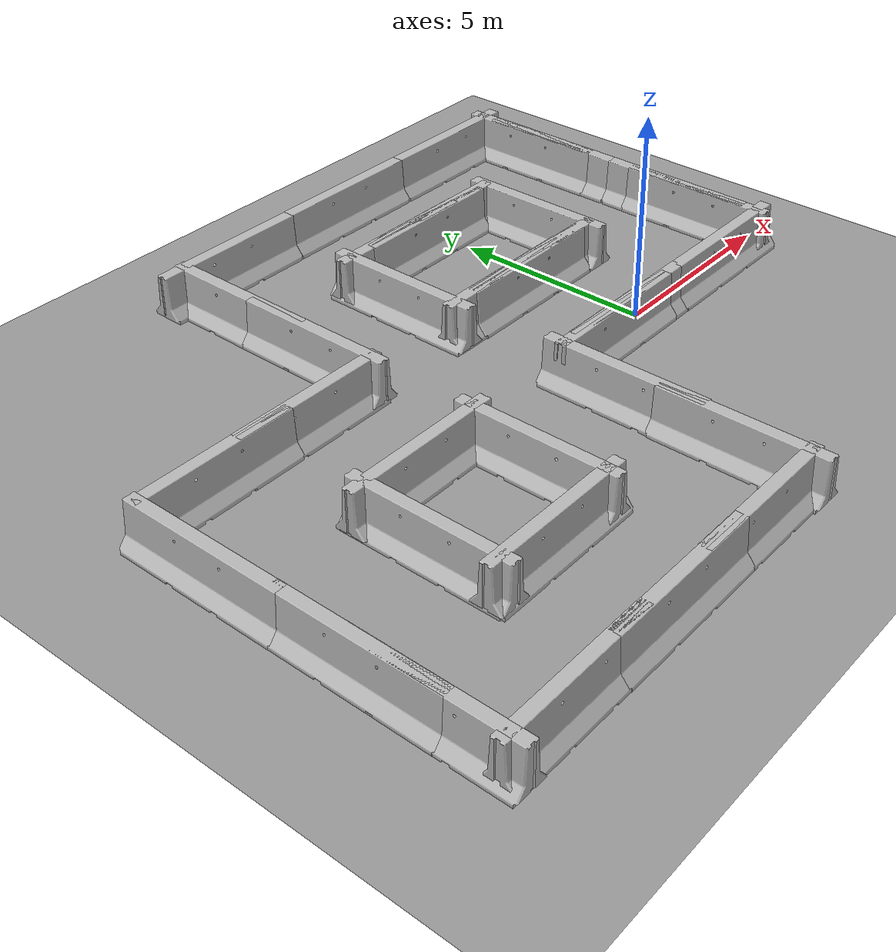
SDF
<sdf version="1.6">
 <world name="default">
  <light name="sun" type="directional">
   <pose>0 0 10 0 -0 0</pose>
   <diffuse>0.8 0.8 0.8 1</diffuse>
   <specular>0.2 0.2 0.2 1</specular>
   <attenuation>
    <range>1000</range>
    <constant>0.9</constant>
    <linear>0.01</linear>
    <quadratic>0.001</quadratic>
   </attenuation>
   <direction>0.5 0.1 -0.9</direction>
  </light>
  <scene><ambient>0.4 0.4 0.4 1</ambient><background>0.7 0.7 0.7 1</background><shadows>1</shadows></scene>
  <physics name="default_physics" default="0" type="ode">
   <max_step_size>0.01</max_step_size>
   <real_time_factor>1</real_time_factor>
   <real_time_update_rate>100</real_time_update_rate>
  </physics>
  <model name="ground_plane_0">
   <static>1</static>
   <link name="link">
    <collision name="collision">
     <geometry><plane><normal>0 0 1</normal><size>100 100</size></plane></geometry>
     <surface><friction><ode><mu>100</mu><mu2>50</mu2></ode></friction></surface>
    </collision>
    <visual name="visual">
     <cast_shadows>0</cast_shadows>
     <geometry><plane><normal>0 0 1</normal><size>100 100</size></plane></geometry>
     <material>
      <script><uri>file://media/materials/scripts/gazebo.material</uri><name>Gazebo/Grey</name></script>
     </material>
    </visual>
    <velocity_decay><linear>0</linear><angular>0</angular></velocity_decay>
   </link>
   <pose>0.497681 0 0 0 -0 0</pose>
  </model>
  <gravity>0 0 -9.8</gravity>
  <magnetic_field>6e-06 2.3e-05 -4.2e-05</magnetic_field>
  <atmosphere type="adiabatic"/>
  <spherical_coordinates>
   <surface_model>EARTH_WGS84</surface_model>
   <latitude_deg>0</latitude_deg>
   <longitude_deg>0</longitude_deg>
   <elevation>0</elevation>
   <heading_deg>0</heading_deg>
  </spherical_coordinates>
  <model name="jersey_barrier_clone">
   <static>1</static>
   <link name="link">
    <visual name="visual">
     <geometry>
      <mesh><uri>model://jersey_barrier/meshes/jersey_barrier.dae</uri><scale>1 1 1</scale></mesh>
     </geometry>
    </visual>
    <collision name="upright">
     <pose>0 0 0.5715 0 -0 0</pose>
     <geometry><box><size>4.06542 0.3063 1.143</size></box></geometry>
    </collision>
    <collision name="base">
     <pose>0 0 0.032258 0 -0 0</pose>
     <geometry><box><size>4.06542 0.8107 0.064516</size></box></geometry>
    </collision>
    <collision name="base2">
     <pose>0 0 0.1 0 -0 0</pose>
     <geometry><box><size>4.06542 0.65 0.1</size></box></geometry>
    </collision>
    <collision name="base3">
     <pose>0 0 0.2 0 -0 0</pose>
     <geometry><box><size>4.06542 0.5 0.1</size></box></geometry>
    </collision>
    <collision name="left-angle">
     <pose>0 -0.224 0.2401 0.9 -0 0</pose>
     <geometry><box><size>4.06542 0.5 0.064516</size></box></geometry>
    </collision>
    <collision name="right-angle">
     <pose>0 0.224 0.2401 -0.9 0 0</pose>
     <geometry><box><size>4.06542 0.5 0.064516</size></box></geometry>
    </collision>
    <velocity_decay><linear>0</linear><angular>0</angular></velocity_decay>
   </link>
   <pose>-1.0164 2.41514 0 0 0 -0.002521</pose>
  </model>
  <model name="jersey_barrier_clone_clone">
   <static>1</static>
   <link name="link">
    <visual name="visual">
     <geometry>
      <mesh><uri>model://jersey_barrier/meshes/jersey_barrier.dae</uri><scale>1 1 1</scale></mesh>
     </geometry>
    </visual>
    <collision name="upright">
     <pose>0 0 0.5715 0 -0 0</pose>
     <geometry><box><size>4.06542 0.3063 1.143</size></box></geometry>
    </collision>
    <collision name="base">
     <pose>0 0 0.032258 0 -0 0</pose>
     <geometry><box><size>4.06542 0.8107 0.064516</size></box></geometry>
    </collision>
    <collision name="base2">
     <pose>0 0 0.1 0 -0 0</pose>
     <geometry><box><size>4.06542 0.65 0.1</size></box></geometry>
    </collision>
    <collision name="base3">
     <pose>0 0 0.2 0 -0 0</pose>
     <geometry><box><size>4.06542 0.5 0.1</size></box></geometry>
    </collision>
    <collision name="left-angle">
     <pose>0 -0.224 0.2401 0.9 -0 0</pose>
     <geometry><box><size>4.06542 0.5 0.064516</size></box></geometry>
    </collision>
    <collision name="right-angle">
     <pose>0 0.224 0.2401 -0.9 0 0</pose>
     <geometry><box><size>4.06542 0.5 0.064516</size></box></geometry>
    </collision>
    <velocity_decay><linear>0</linear><angular>0</angular></velocity_decay>
   </link>
   <pose>-1.03133 -0.427588 0 0 0 -0.002521</pose>
  </model>
  <model name="jersey_barrier_clone_clone_clone">
   <static>1</static>
   <link name="link">
    <visual name="visual">
     <geometry>
      <mesh><uri>model://jersey_barrier/meshes/jersey_barrier.dae</uri><scale>1 1 1</scale></mesh>
     </geometry>
    </visual>
    <collision name="upright">
     <pose>0 0 0.5715 0 -0 0</pose>
     <geometry><box><size>4.06542 0.3063 1.143</size></box></geometry>
    </collision>
    <collision name="base">
     <pose>0 0 0.032258 0 -0 0</pose>
     <geometry><box><size>4.06542 0.8107 0.064516</size></box></geometry>
    </collision>
    <collision name="base2">
     <pose>0 0 0.1 0 -0 0</pose>
     <geometry><box><size>4.06542 0.65 0.1</size></box></geometry>
    </collision>
    <collision name="base3">
     <pose>0 0 0.2 0 -0 0</pose>
     <geometry><box><size>4.06542 0.5 0.1</size></box></geometry>
    </collision>
    <collision name="left-angle">
     <pose>0 -0.224 0.2401 0.9 -0 0</pose>
     <geometry><box><size>4.06542 0.5 0.064516</size></box></geometry>
    </collision>
    <collision name="right-angle">
     <pose>0 0.224 0.2401 -0.9 0 0</pose>
     <geometry><box><size>4.06542 0.5 0.064516</size></box></geometry>
    </collision>
    <velocity_decay><linear>0</linear><angular>0</angular></velocity_decay>
   </link>
   <pose>-3.39729 -1.98888 0 0 -0 1.56994</pose>
  </model>
  <model name="jersey_barrier_clone_clone_clone_clone">
   <static>1</static>
   <link name="link">
    <visual name="visual">
     <geometry>
      <mesh><uri>model://jersey_barrier/meshes/jersey_barrier.dae</uri><scale>1 1 1</scale></mesh>
     </geometry>
    </visual>
    <collision name="upright">
     <pose>0 0 0.5715 0 -0 0</pose>
     <geometry><box><size>4.06542 0.3063 1.143</size></box></geometry>
    </collision>
    <collision name="base">
     <pose>0 0 0.032258 0 -0 0</pose>
     <geometry><box><size>4.06542 0.8107 0.064516</size></box></geometry>
    </collision>
    <collision name="base2">
     <pose>0 0 0.1 0 -0 0</pose>
     <geometry><box><size>4.06542 0.65 0.1</size></box></geometry>
    </collision>
    <collision name="base3">
     <pose>0 0 0.2 0 -0 0</pose>
     <geometry><box><size>4.06542 0.5 0.1</size></box></geometry>
    </collision>
    <collision name="left-angle">
     <pose>0 -0.224 0.2401 0.9 -0 0</pose>
     <geometry><box><size>4.06542 0.5 0.064516</size></box></geometry>
    </collision>
    <collision name="right-angle">
     <pose>0 0.224 0.2401 -0.9 0 0</pose>
     <geometry><box><size>4.06542 0.5 0.064516</size></box></geometry>
    </collision>
    <velocity_decay><linear>0</linear><angular>0</angular></velocity_decay>
   </link>
   <pose>-3.58771 4.01957 0 0 -0 1.56994</pose>
  </model>
  <model name="jersey_barrier_clone_clone_clone_0">
   <static>1</static>
   <link name="link">
    <visual name="visual">
     <geometry>
      <mesh><uri>model://jersey_barrier/meshes/jersey_barrier.dae</uri><scale>1 1 1</scale></mesh>
     </geometry>
    </visual>
    <collision name="upright">
     <pose>0 0 0.5715 0 -0 0</pose>
     <geometry><box><size>4.06542 0.3063 1.143</size></box></geometry>
    </collision>
    <collision name="base">
     <pose>0 0 0.032258 0 -0 0</pose>
     <geometry><box><size>4.06542 0.8107 0.064516</size></box></geometry>
    </collision>
    <collision name="base2">
     <pose>0 0 0.1 0 -0 0</pose>
     <geometry><box><size>4.06542 0.65 0.1</size></box></geometry>
    </collision>
    <collision name="base3">
     <pose>0 0 0.2 0 -0 0</pose>
     <geometry><box><size>4.06542 0.5 0.1</size></box></geometry>
    </collision>
    <collision name="left-angle">
     <pose>0 -0.224 0.2401 0.9 -0 0</pose>
     <geometry><box><size>4.06542 0.5 0.064516</size></box></geometry>
    </collision>
    <collision name="right-angle">
     <pose>0 0.224 0.2401 -0.9 0 0</pose>
     <geometry><box><size>4.06542 0.5 0.064516</size></box></geometry>
    </collision>
    <velocity_decay><linear>0</linear><angular>0</angular></velocity_decay>
   </link>
   <pose>2.89349 -0.44373 0 0 0 -0.002521</pose>
  </model>
  <model name="jersey_barrier_clone_clone_clone_clone_0">
   <static>1</static>
   <link name="link">
    <visual name="visual">
     <geometry>
      <mesh><uri>model://jersey_barrier/meshes/jersey_barrier.dae</uri><scale>1 1 1</scale></mesh>
     </geometry>
    </visual>
    <collision name="upright">
     <pose>0 0 0.5715 0 -0 0</pose>
     <geometry><box><size>4.06542 0.3063 1.143</size></box></geometry>
    </collision>
    <collision name="base">
     <pose>0 0 0.032258 0 -0 0</pose>
     <geometry><box><size>4.06542 0.8107 0.064516</size></box></geometry>
    </collision>
    <collision name="base2">
     <pose>0 0 0.1 0 -0 0</pose>
     <geometry><box><size>4.06542 0.65 0.1</size></box></geometry>
    </collision>
    <collision name="base3">
     <pose>0 0 0.2 0 -0 0</pose>
     <geometry><box><size>4.06542 0.5 0.1</size></box></geometry>
    </collision>
    <collision name="left-angle">
     <pose>0 -0.224 0.2401 0.9 -0 0</pose>
     <geometry><box><size>4.06542 0.5 0.064516</size></box></geometry>
    </collision>
    <collision name="right-angle">
     <pose>0 0.224 0.2401 -0.9 0 0</pose>
     <geometry><box><size>4.06542 0.5 0.064516</size></box></geometry>
    </collision>
    <velocity_decay><linear>0</linear><angular>0</angular></velocity_decay>
   </link>
   <pose>1.32989 3.97697 0 0 -0 1.56994</pose>
  </model>
  <model name="jersey_barrier_clone_clone_clone_clone_1">
   <static>1</static>
   <link name="link">
    <visual name="visual">
     <geometry>
      <mesh><uri>model://jersey_barrier/meshes/jersey_barrier.dae</uri><scale>1 1 1</scale></mesh>
     </geometry>
    </visual>
    <collision name="upright">
     <pose>0 0 0.5715 0 -0 0</pose>
     <geometry><box><size>4.06542 0.3063 1.143</size></box></geometry>
    </collision>
    <collision name="base">
     <pose>0 0 0.032258 0 -0 0</pose>
     <geometry><box><size>4.06542 0.8107 0.064516</size></box></geometry>
    </collision>
    <collision name="base2">
     <pose>0 0 0.1 0 -0 0</pose>
     <geometry><box><size>4.06542 0.65 0.1</size></box></geometry>
    </collision>
    <collision name="base3">
     <pose>0 0 0.2 0 -0 0</pose>
     <geometry><box><size>4.06542 0.5 0.1</size></box></geometry>
    </collision>
    <collision name="left-angle">
     <pose>0 -0.224 0.2401 0.9 -0 0</pose>
     <geometry><box><size>4.06542 0.5 0.064516</size></box></geometry>
    </collision>
    <collision name="right-angle">
     <pose>0 0.224 0.2401 -0.9 0 0</pose>
     <geometry><box><size>4.06542 0.5 0.064516</size></box></geometry>
    </collision>
    <velocity_decay><linear>0</linear><angular>0</angular></velocity_decay>
   </link>
   <pose>4.47676 1.91444 0 0 -0 1.56994</pose>
  </model>
  <model name="jersey_barrier_clone_clone_clone_clone_2">
   <static>1</static>
   <link name="link">
    <visual name="visual">
     <geometry>
      <mesh><uri>model://jersey_barrier/meshes/jersey_barrier.dae</uri><scale>1 1 1</scale></mesh>
     </geometry>
    </visual>
    <collision name="upright">
     <pose>0 0 0.5715 0 -0 0</pose>
     <geometry><box><size>4.06542 0.3063 1.143</size></box></geometry>
    </collision>
    <collision name="base">
     <pose>0 0 0.032258 0 -0 0</pose>
     <geometry><box><size>4.06542 0.8107 0.064516</size></box></geometry>
    </collision>
    <collision name="base2">
     <pose>0 0 0.1 0 -0 0</pose>
     <geometry><box><size>4.06542 0.65 0.1</size></box></geometry>
    </collision>
    <collision name="base3">
     <pose>0 0 0.2 0 -0 0</pose>
     <geometry><box><size>4.06542 0.5 0.1</size></box></geometry>
    </collision>
    <collision name="left-angle">
     <pose>0 -0.224 0.2401 0.9 -0 0</pose>
     <geometry><box><size>4.06542 0.5 0.064516</size></box></geometry>
    </collision>
    <collision name="right-angle">
     <pose>0 0.224 0.2401 -0.9 0 0</pose>
     <geometry><box><size>4.06542 0.5 0.064516</size></box></geometry>
    </collision>
    <velocity_decay><linear>0</linear><angular>0</angular></velocity_decay>
   </link>
   <pose>4.48362 5.90031 0 0 -0 1.56994</pose>
  </model>
  <model name="jersey_barrier_clone_clone_0">
   <static>1</static>
   <link name="link">
    <visual name="visual">
     <geometry>
      <mesh><uri>model://jersey_barrier/meshes/jersey_barrier.dae</uri><scale>1 1 1</scale></mesh>
     </geometry>
    </visual>
    <collision name="upright">
     <pose>0 0 0.5715 0 -0 0</pose>
     <geometry><box><size>4.06542 0.3063 1.143</size></box></geometry>
    </collision>
    <collision name="base">
     <pose>0 0 0.032258 0 -0 0</pose>
     <geometry><box><size>4.06542 0.8107 0.064516</size></box></geometry>
    </collision>
    <collision name="base2">
     <pose>0 0 0.1 0 -0 0</pose>
     <geometry><box><size>4.06542 0.65 0.1</size></box></geometry>
    </collision>
    <collision name="base3">
     <pose>0 0 0.2 0 -0 0</pose>
     <geometry><box><size>4.06542 0.5 0.1</size></box></geometry>
    </collision>
    <collision name="left-angle">
     <pose>0 -0.224 0.2401 0.9 -0 0</pose>
     <geometry><box><size>4.06542 0.5 0.064516</size></box></geometry>
    </collision>
    <collision name="right-angle">
     <pose>0 0.224 0.2401 -0.9 0 0</pose>
     <geometry><box><size>4.06542 0.5 0.064516</size></box></geometry>
    </collision>
    <velocity_decay><linear>0</linear><angular>0</angular></velocity_decay>
   </link>
   <pose>2.90937 8.26436 0 0 0 -0.002521</pose>
  </model>
  <model name="jersey_barrier_clone_clone_0_clone">
   <static>1</static>
   <link name="link">
    <visual name="visual">
     <geometry>
      <mesh><uri>model://jersey_barrier/meshes/jersey_barrier.dae</uri><scale>1 1 1</scale></mesh>
     </geometry>
    </visual>
    <collision name="upright">
     <pose>0 0 0.5715 0 -0 0</pose>
     <geometry><box><size>4.06542 0.3063 1.143</size></box></geometry>
    </collision>
    <collision name="base">
     <pose>0 0 0.032258 0 -0 0</pose>
     <geometry><box><size>4.06542 0.8107 0.064516</size></box></geometry>
    </collision>
    <collision name="base2">
     <pose>0 0 0.1 0 -0 0</pose>
     <geometry><box><size>4.06542 0.65 0.1</size></box></geometry>
    </collision>
    <collision name="base3">
     <pose>0 0 0.2 0 -0 0</pose>
     <geometry><box><size>4.06542 0.5 0.1</size></box></geometry>
    </collision>
    <collision name="left-angle">
     <pose>0 -0.224 0.2401 0.9 -0 0</pose>
     <geometry><box><size>4.06542 0.5 0.064516</size></box></geometry>
    </collision>
    <collision name="right-angle">
     <pose>0 0.224 0.2401 -0.9 0 0</pose>
     <geometry><box><size>4.06542 0.5 0.064516</size></box></geometry>
    </collision>
    <velocity_decay><linear>0</linear><angular>0</angular></velocity_decay>
   </link>
   <pose>-1.08414 8.27205 0 0 0 -0.002521</pose>
  </model>
  <model name="jersey_barrier_clone_clone_0_clone_0">
   <static>1</static>
   <link name="link">
    <visual name="visual">
     <geometry>
      <mesh><uri>model://jersey_barrier/meshes/jersey_barrier.dae</uri><scale>1 1 1</scale></mesh>
     </geometry>
    </visual>
    <collision name="upright">
     <pose>0 0 0.5715 0 -0 0</pose>
     <geometry><box><size>4.06542 0.3063 1.143</size></box></geometry>
    </collision>
    <collision name="base">
     <pose>0 0 0.032258 0 -0 0</pose>
     <geometry><box><size>4.06542 0.8107 0.064516</size></box></geometry>
    </collision>
    <collision name="base2">
     <pose>0 0 0.1 0 -0 0</pose>
     <geometry><box><size>4.06542 0.65 0.1</size></box></geometry>
    </collision>
    <collision name="base3">
     <pose>0 0 0.2 0 -0 0</pose>
     <geometry><box><size>4.06542 0.5 0.1</size></box></geometry>
    </collision>
    <collision name="left-angle">
     <pose>0 -0.224 0.2401 0.9 -0 0</pose>
     <geometry><box><size>4.06542 0.5 0.064516</size></box></geometry>
    </collision>
    <collision name="right-angle">
     <pose>0 0.224 0.2401 -0.9 0 0</pose>
     <geometry><box><size>4.06542 0.5 0.064516</size></box></geometry>
    </collision>
    <velocity_decay><linear>0</linear><angular>0</angular></velocity_decay>
   </link>
   <pose>-0.979254 5.59857 0 0 0 -0.002521</pose>
  </model>
  <model name="jersey_barrier_clone_clone_0_clone_1">
   <static>1</static>
   <link name="link">
    <visual name="visual">
     <geometry>
      <mesh><uri>model://jersey_barrier/meshes/jersey_barrier.dae</uri><scale>1 1 1</scale></mesh>
     </geometry>
    </visual>
    <collision name="upright">
     <pose>0 0 0.5715 0 -0 0</pose>
     <geometry><box><size>4.06542 0.3063 1.143</size></box></geometry>
    </collision>
    <collision name="base">
     <pose>0 0 0.032258 0 -0 0</pose>
     <geometry><box><size>4.06542 0.8107 0.064516</size></box></geometry>
    </collision>
    <collision name="base2">
     <pose>0 0 0.1 0 -0 0</pose>
     <geometry><box><size>4.06542 0.65 0.1</size></box></geometry>
    </collision>
    <collision name="base3">
     <pose>0 0 0.2 0 -0 0</pose>
     <geometry><box><size>4.06542 0.5 0.1</size></box></geometry>
    </collision>
    <collision name="left-angle">
     <pose>0 -0.224 0.2401 0.9 -0 0</pose>
     <geometry><box><size>4.06542 0.5 0.064516</size></box></geometry>
    </collision>
    <collision name="right-angle">
     <pose>0 0.224 0.2401 -0.9 0 0</pose>
     <geometry><box><size>4.06542 0.5 0.064516</size></box></geometry>
    </collision>
    <velocity_decay><linear>0</linear><angular>0</angular></velocity_decay>
   </link>
   <pose>-5.07599 8.2675 0 0 0 -0.002521</pose>
  </model>
  <model name="jersey_barrier_clone_clone_clone_clone_clone">
   <static>1</static>
   <link name="link">
    <visual name="visual">
     <geometry>
      <mesh><uri>model://jersey_barrier/meshes/jersey_barrier.dae</uri><scale>1 1 1</scale></mesh>
     </geometry>
    </visual>
    <collision name="upright">
     <pose>0 0 0.5715 0 -0 0</pose>
     <geometry><box><size>4.06542 0.3063 1.143</size></box></geometry>
    </collision>
    <collision name="base">
     <pose>0 0 0.032258 0 -0 0</pose>
     <geometry><box><size>4.06542 0.8107 0.064516</size></box></geometry>
    </collision>
    <collision name="base2">
     <pose>0 0 0.1 0 -0 0</pose>
     <geometry><box><size>4.06542 0.65 0.1</size></box></geometry>
    </collision>
    <collision name="base3">
     <pose>0 0 0.2 0 -0 0</pose>
     <geometry><box><size>4.06542 0.5 0.1</size></box></geometry>
    </collision>
    <collision name="left-angle">
     <pose>0 -0.224 0.2401 0.9 -0 0</pose>
     <geometry><box><size>4.06542 0.5 0.064516</size></box></geometry>
    </collision>
    <collision name="right-angle">
     <pose>0 0.224 0.2401 -0.9 0 0</pose>
     <geometry><box><size>4.06542 0.5 0.064516</size></box></geometry>
    </collision>
    <velocity_decay><linear>0</linear><angular>0</angular></velocity_decay>
   </link>
   <pose>-6.41614 6.4485 0 0 -0 1.56994</pose>
  </model>
  <model name="jersey_barrier_clone_clone_clone_clone_clone_0">
   <static>1</static>
   <link name="link">
    <visual name="visual">
     <geometry>
      <mesh><uri>model://jersey_barrier/meshes/jersey_barrier.dae</uri><scale>1 1 1</scale></mesh>
     </geometry>
    </visual>
    <collision name="upright">
     <pose>0 0 0.5715 0 -0 0</pose>
     <geometry><box><size>4.06542 0.3063 1.143</size></box></geometry>
    </collision>
    <collision name="base">
     <pose>0 0 0.032258 0 -0 0</pose>
     <geometry><box><size>4.06542 0.8107 0.064516</size></box></geometry>
    </collision>
    <collision name="base2">
     <pose>0 0 0.1 0 -0 0</pose>
     <geometry><box><size>4.06542 0.65 0.1</size></box></geometry>
    </collision>
    <collision name="base3">
     <pose>0 0 0.2 0 -0 0</pose>
     <geometry><box><size>4.06542 0.5 0.1</size></box></geometry>
    </collision>
    <collision name="left-angle">
     <pose>0 -0.224 0.2401 0.9 -0 0</pose>
     <geometry><box><size>4.06542 0.5 0.064516</size></box></geometry>
    </collision>
    <collision name="right-angle">
     <pose>0 0.224 0.2401 -0.9 0 0</pose>
     <geometry><box><size>4.06542 0.5 0.064516</size></box></geometry>
    </collision>
    <velocity_decay><linear>0</linear><angular>0</angular></velocity_decay>
   </link>
   <pose>4.46939 1.27461 0 0 -0 1.56994</pose>
  </model>
  <model name="jersey_barrier_clone_clone_clone_clone_clone_1">
   <static>1</static>
   <link name="link">
    <visual name="visual">
     <geometry>
      <mesh><uri>model://jersey_barrier/meshes/jersey_barrier.dae</uri><scale>1 1 1</scale></mesh>
     </geometry>
    </visual>
    <collision name="upright">
     <pose>0 0 0.5715 0 -0 0</pose>
     <geometry><box><size>4.06542 0.3063 1.143</size></box></geometry>
    </collision>
    <collision name="base">
     <pose>0 0 0.032258 0 -0 0</pose>
     <geometry><box><size>4.06542 0.8107 0.064516</size></box></geometry>
    </collision>
    <collision name="base2">
     <pose>0 0 0.1 0 -0 0</pose>
     <geometry><box><size>4.06542 0.65 0.1</size></box></geometry>
    </collision>
    <collision name="base3">
     <pose>0 0 0.2 0 -0 0</pose>
     <geometry><box><size>4.06542 0.5 0.1</size></box></geometry>
    </collision>
    <collision name="left-angle">
     <pose>0 -0.224 0.2401 0.9 -0 0</pose>
     <geometry><box><size>4.06542 0.5 0.064516</size></box></geometry>
    </collision>
    <collision name="right-angle">
     <pose>0 0.224 0.2401 -0.9 0 0</pose>
     <geometry><box><size>4.06542 0.5 0.064516</size></box></geometry>
    </collision>
    <velocity_decay><linear>0</linear><angular>0</angular></velocity_decay>
   </link>
   <pose>4.4751 6.57397 0 0 -0 1.56994</pose>
  </model>
  <model name="jersey_barrier_clone_clone_1">
   <static>1</static>
   <link name="link">
    <visual name="visual">
     <geometry>
      <mesh><uri>model://jersey_barrier/meshes/jersey_barrier.dae</uri><scale>1 1 1</scale></mesh>
     </geometry>
    </visual>
    <collision name="upright">
     <pose>0 0 0.5715 0 -0 0</pose>
     <geometry><box><size>4.06542 0.3063 1.143</size></box></geometry>
    </collision>
    <collision name="base">
     <pose>0 0 0.032258 0 -0 0</pose>
     <geometry><box><size>4.06542 0.8107 0.064516</size></box></geometry>
    </collision>
    <collision name="base2">
     <pose>0 0 0.1 0 -0 0</pose>
     <geometry><box><size>4.06542 0.65 0.1</size></box></geometry>
    </collision>
    <collision name="base3">
     <pose>0 0 0.2 0 -0 0</pose>
     <geometry><box><size>4.06542 0.5 0.1</size></box></geometry>
    </collision>
    <collision name="left-angle">
     <pose>0 -0.224 0.2401 0.9 -0 0</pose>
     <geometry><box><size>4.06542 0.5 0.064516</size></box></geometry>
    </collision>
    <collision name="right-angle">
     <pose>0 0.224 0.2401 -0.9 0 0</pose>
     <geometry><box><size>4.06542 0.5 0.064516</size></box></geometry>
    </collision>
    <velocity_decay><linear>0</linear><angular>0</angular></velocity_decay>
   </link>
   <pose>-1.86057 2.44663 0 0 0 -0.002521</pose>
  </model>
  <model name="jersey_barrier_clone_clone_2">
   <static>1</static>
   <link name="link">
    <visual name="visual">
     <geometry>
      <mesh><uri>model://jersey_barrier/meshes/jersey_barrier.dae</uri><scale>1 1 1</scale></mesh>
     </geometry>
    </visual>
    <collision name="upright">
     <pose>0 0 0.5715 0 -0 0</pose>
     <geometry><box><size>4.06542 0.3063 1.143</size></box></geometry>
    </collision>
    <collision name="base">
     <pose>0 0 0.032258 0 -0 0</pose>
     <geometry><box><size>4.06542 0.8107 0.064516</size></box></geometry>
    </collision>
    <collision name="base2">
     <pose>0 0 0.1 0 -0 0</pose>
     <geometry><box><size>4.06542 0.65 0.1</size></box></geometry>
    </collision>
    <collision name="base3">
     <pose>0 0 0.2 0 -0 0</pose>
     <geometry><box><size>4.06542 0.5 0.1</size></box></geometry>
    </collision>
    <collision name="left-angle">
     <pose>0 -0.224 0.2401 0.9 -0 0</pose>
     <geometry><box><size>4.06542 0.5 0.064516</size></box></geometry>
    </collision>
    <collision name="right-angle">
     <pose>0 0.224 0.2401 -0.9 0 0</pose>
     <geometry><box><size>4.06542 0.5 0.064516</size></box></geometry>
    </collision>
    <velocity_decay><linear>0</linear><angular>0</angular></velocity_decay>
   </link>
   <pose>-1.9419 5.62522 0 0 0 -0.002521</pose>
  </model>
  <model name="jersey_barrier_clone_clone_3">
   <static>1</static>
   <link name="link">
    <visual name="visual">
     <geometry>
      <mesh><uri>model://jersey_barrier/meshes/jersey_barrier.dae</uri><scale>1 1 1</scale></mesh>
     </geometry>
    </visual>
    <collision name="upright">
     <pose>0 0 0.5715 0 -0 0</pose>
     <geometry><box><size>4.06542 0.3063 1.143</size></box></geometry>
    </collision>
    <collision name="base">
     <pose>0 0 0.032258 0 -0 0</pose>
     <geometry><box><size>4.06542 0.8107 0.064516</size></box></geometry>
    </collision>
    <collision name="base2">
     <pose>0 0 0.1 0 -0 0</pose>
     <geometry><box><size>4.06542 0.65 0.1</size></box></geometry>
    </collision>
    <collision name="base3">
     <pose>0 0 0.2 0 -0 0</pose>
     <geometry><box><size>4.06542 0.5 0.1</size></box></geometry>
    </collision>
    <collision name="left-angle">
     <pose>0 -0.224 0.2401 0.9 -0 0</pose>
     <geometry><box><size>4.06542 0.5 0.064516</size></box></geometry>
    </collision>
    <collision name="right-angle">
     <pose>0 0.224 0.2401 -0.9 0 0</pose>
     <geometry><box><size>4.06542 0.5 0.064516</size></box></geometry>
    </collision>
    <velocity_decay><linear>0</linear><angular>0</angular></velocity_decay>
   </link>
   <pose>-0.606146 5.61231 0 0 0 -0.002521</pose>
  </model>
  <model name="jersey_barrier_clone_clone_4">
   <static>1</static>
   <link name="link">
    <visual name="visual">
     <geometry>
      <mesh><uri>model://jersey_barrier/meshes/jersey_barrier.dae</uri><scale>1 1 1</scale></mesh>
     </geometry>
    </visual>
    <collision name="upright">
     <pose>0 0 0.5715 0 -0 0</pose>
     <geometry><box><size>4.06542 0.3063 1.143</size></box></geometry>
    </collision>
    <collision name="base">
     <pose>0 0 0.032258 0 -0 0</pose>
     <geometry><box><size>4.06542 0.8107 0.064516</size></box></geometry>
    </collision>
    <collision name="base2">
     <pose>0 0 0.1 0 -0 0</pose>
     <geometry><box><size>4.06542 0.65 0.1</size></box></geometry>
    </collision>
    <collision name="base3">
     <pose>0 0 0.2 0 -0 0</pose>
     <geometry><box><size>4.06542 0.5 0.1</size></box></geometry>
    </collision>
    <collision name="left-angle">
     <pose>0 -0.224 0.2401 0.9 -0 0</pose>
     <geometry><box><size>4.06542 0.5 0.064516</size></box></geometry>
    </collision>
    <collision name="right-angle">
     <pose>0 0.224 0.2401 -0.9 0 0</pose>
     <geometry><box><size>4.06542 0.5 0.064516</size></box></geometry>
    </collision>
    <velocity_decay><linear>0</linear><angular>0</angular></velocity_decay>
   </link>
   <pose>-0.587404 2.42434 0 0 0 -0.002521</pose>
  </model>
  <model name="jersey_barrier_clone_clone_clone_clone_clone_clone">
   <static>1</static>
   <link name="link">
    <visual name="visual">
     <geometry>
      <mesh><uri>model://jersey_barrier/meshes/jersey_barrier.dae</uri><scale>1 1 1</scale></mesh>
     </geometry>
    </visual>
    <collision name="upright">
     <pose>0 0 0.5715 0 -0 0</pose>
     <geometry><box><size>4.06542 0.3063 1.143</size></box></geometry>
    </collision>
    <collision name="base">
     <pose>0 0 0.032258 0 -0 0</pose>
     <geometry><box><size>4.06542 0.8107 0.064516</size></box></geometry>
    </collision>
    <collision name="base2">
     <pose>0 0 0.1 0 -0 0</pose>
     <geometry><box><size>4.06542 0.65 0.1</size></box></geometry>
    </collision>
    <collision name="base3">
     <pose>0 0 0.2 0 -0 0</pose>
     <geometry><box><size>4.06542 0.5 0.1</size></box></geometry>
    </collision>
    <collision name="left-angle">
     <pose>0 -0.224 0.2401 0.9 -0 0</pose>
     <geometry><box><size>4.06542 0.5 0.064516</size></box></geometry>
    </collision>
    <collision name="right-angle">
     <pose>0 0.224 0.2401 -0.9 0 0</pose>
     <geometry><box><size>4.06542 0.5 0.064516</size></box></geometry>
    </collision>
    <velocity_decay><linear>0</linear><angular>0</angular></velocity_decay>
   </link>
   <pose>-6.41918 4.04648 0 0 -0 1.56994</pose>
  </model>
  <model name="jersey_barrier_clone_clone_clone_1">
   <static>1</static>
   <link name="link">
    <visual name="visual">
     <geometry>
      <mesh><uri>model://jersey_barrier/meshes/jersey_barrier.dae</uri><scale>1 1 1</scale></mesh>
     </geometry>
    </visual>
    <collision name="upright">
     <pose>0 0 0.5715 0 -0 0</pose>
     <geometry><box><size>4.06542 0.3063 1.143</size></box></geometry>
    </collision>
    <collision name="base">
     <pose>0 0 0.032258 0 -0 0</pose>
     <geometry><box><size>4.06542 0.8107 0.064516</size></box></geometry>
    </collision>
    <collision name="base2">
     <pose>0 0 0.1 0 -0 0</pose>
     <geometry><box><size>4.06542 0.65 0.1</size></box></geometry>
    </collision>
    <collision name="base3">
     <pose>0 0 0.2 0 -0 0</pose>
     <geometry><box><size>4.06542 0.5 0.1</size></box></geometry>
    </collision>
    <collision name="left-angle">
     <pose>0 -0.224 0.2401 0.9 -0 0</pose>
     <geometry><box><size>4.06542 0.5 0.064516</size></box></geometry>
    </collision>
    <collision name="right-angle">
     <pose>0 0.224 0.2401 -0.9 0 0</pose>
     <geometry><box><size>4.06542 0.5 0.064516</size></box></geometry>
    </collision>
    <velocity_decay><linear>0</linear><angular>0</angular></velocity_decay>
   </link>
   <pose>-8.24268 2.42173 0 0 0 -0.002521</pose>
  </model>
  <model name="jersey_barrier_clone_clone_clone_2">
   <static>1</static>
   <link name="link">
    <visual name="visual">
     <geometry>
      <mesh><uri>model://jersey_barrier/meshes/jersey_barrier.dae</uri><scale>1 1 1</scale></mesh>
     </geometry>
    </visual>
    <collision name="upright">
     <pose>0 0 0.5715 0 -0 0</pose>
     <geometry><box><size>4.06542 0.3063 1.143</size></box></geometry>
    </collision>
    <collision name="base">
     <pose>0 0 0.032258 0 -0 0</pose>
     <geometry><box><size>4.06542 0.8107 0.064516</size></box></geometry>
    </collision>
    <collision name="base2">
     <pose>0 0 0.1 0 -0 0</pose>
     <geometry><box><size>4.06542 0.65 0.1</size></box></geometry>
    </collision>
    <collision name="base3">
     <pose>0 0 0.2 0 -0 0</pose>
     <geometry><box><size>4.06542 0.5 0.1</size></box></geometry>
    </collision>
    <collision name="left-angle">
     <pose>0 -0.224 0.2401 0.9 -0 0</pose>
     <geometry><box><size>4.06542 0.5 0.064516</size></box></geometry>
    </collision>
    <collision name="right-angle">
     <pose>0 0.224 0.2401 -0.9 0 0</pose>
     <geometry><box><size>4.06542 0.5 0.064516</size></box></geometry>
    </collision>
    <velocity_decay><linear>0</linear><angular>0</angular></velocity_decay>
   </link>
   <pose>-1.54483 -0.436408 0 0 0 -0.002521</pose>
  </model>
  <model name="jersey_barrier_clone_clone_clone_clone_3">
   <static>1</static>
   <link name="link">
    <visual name="visual">
     <geometry>
      <mesh><uri>model://jersey_barrier/meshes/jersey_barrier.dae</uri><scale>1 1 1</scale></mesh>
     </geometry>
    </visual>
    <collision name="upright">
     <pose>0 0 0.5715 0 -0 0</pose>
     <geometry><box><size>4.06542 0.3063 1.143</size></box></geometry>
    </collision>
    <collision name="base">
     <pose>0 0 0.032258 0 -0 0</pose>
     <geometry><box><size>4.06542 0.8107 0.064516</size></box></geometry>
    </collision>
    <collision name="base2">
     <pose>0 0 0.1 0 -0 0</pose>
     <geometry><box><size>4.06542 0.65 0.1</size></box></geometry>
    </collision>
    <collision name="base3">
     <pose>0 0 0.2 0 -0 0</pose>
     <geometry><box><size>4.06542 0.5 0.1</size></box></geometry>
    </collision>
    <collision name="left-angle">
     <pose>0 -0.224 0.2401 0.9 -0 0</pose>
     <geometry><box><size>4.06542 0.5 0.064516</size></box></geometry>
    </collision>
    <collision name="right-angle">
     <pose>0 0.224 0.2401 -0.9 0 0</pose>
     <geometry><box><size>4.06542 0.5 0.064516</size></box></geometry>
    </collision>
    <velocity_decay><linear>0</linear><angular>0</angular></velocity_decay>
   </link>
   <pose>-6.422 -2.02626 0 0 -0 1.56994</pose>
  </model>
  <model name="jersey_barrier_clone_clone_clone_1_clone">
   <static>1</static>
   <link name="link">
    <visual name="visual">
     <geometry>
      <mesh><uri>model://jersey_barrier/meshes/jersey_barrier.dae</uri><scale>1 1 1</scale></mesh>
     </geometry>
    </visual>
    <collision name="upright">
     <pose>0 0 0.5715 0 -0 0</pose>
     <geometry><box><size>4.06542 0.3063 1.143</size></box></geometry>
    </collision>
    <collision name="base">
     <pose>0 0 0.032258 0 -0 0</pose>
     <geometry><box><size>4.06542 0.8107 0.064516</size></box></geometry>
    </collision>
    <collision name="base2">
     <pose>0 0 0.1 0 -0 0</pose>
     <geometry><box><size>4.06542 0.65 0.1</size></box></geometry>
    </collision>
    <collision name="base3">
     <pose>0 0 0.2 0 -0 0</pose>
     <geometry><box><size>4.06542 0.5 0.1</size></box></geometry>
    </collision>
    <collision name="left-angle">
     <pose>0 -0.224 0.2401 0.9 -0 0</pose>
     <geometry><box><size>4.06542 0.5 0.064516</size></box></geometry>
    </collision>
    <collision name="right-angle">
     <pose>0 0.224 0.2401 -0.9 0 0</pose>
     <geometry><box><size>4.06542 0.5 0.064516</size></box></geometry>
    </collision>
    <velocity_decay><linear>0</linear><angular>0</angular></velocity_decay>
   </link>
   <pose>-8.06188 -0.407534 0 0 0 -0.002521</pose>
  </model>
  <model name="jersey_barrier_clone_clone_clone_clone_4">
   <static>1</static>
   <link name="link">
    <visual name="visual">
     <geometry>
      <mesh><uri>model://jersey_barrier/meshes/jersey_barrier.dae</uri><scale>1 1 1</scale></mesh>
     </geometry>
    </visual>
    <collision name="upright">
     <pose>0 0 0.5715 0 -0 0</pose>
     <geometry><box><size>4.06542 0.3063 1.143</size></box></geometry>
    </collision>
    <collision name="base">
     <pose>0 0 0.032258 0 -0 0</pose>
     <geometry><box><size>4.06542 0.8107 0.064516</size></box></geometry>
    </collision>
    <collision name="base2">
     <pose>0 0 0.1 0 -0 0</pose>
     <geometry><box><size>4.06542 0.65 0.1</size></box></geometry>
    </collision>
    <collision name="base3">
     <pose>0 0 0.2 0 -0 0</pose>
     <geometry><box><size>4.06542 0.5 0.1</size></box></geometry>
    </collision>
    <collision name="left-angle">
     <pose>0 -0.224 0.2401 0.9 -0 0</pose>
     <geometry><box><size>4.06542 0.5 0.064516</size></box></geometry>
    </collision>
    <collision name="right-angle">
     <pose>0 0.224 0.2401 -0.9 0 0</pose>
     <geometry><box><size>4.06542 0.5 0.064516</size></box></geometry>
    </collision>
    <velocity_decay><linear>0</linear><angular>0</angular></velocity_decay>
   </link>
   <pose>-3.43419 -4.86922 0 0 -0 1.56994</pose>
  </model>
  <model name="jersey_barrier_clone_clone_clone_1_clone_clone">
   <static>1</static>
   <link name="link">
    <visual name="visual">
     <geometry>
      <mesh><uri>model://jersey_barrier/meshes/jersey_barrier.dae</uri><scale>1 1 1</scale></mesh>
     </geometry>
    </visual>
    <collision name="upright">
     <pose>0 0 0.5715 0 -0 0</pose>
     <geometry><box><size>4.06542 0.3063 1.143</size></box></geometry>
    </collision>
    <collision name="base">
     <pose>0 0 0.032258 0 -0 0</pose>
     <geometry><box><size>4.06542 0.8107 0.064516</size></box></geometry>
    </collision>
    <collision name="base2">
     <pose>0 0 0.1 0 -0 0</pose>
     <geometry><box><size>4.06542 0.65 0.1</size></box></geometry>
    </collision>
    <collision name="base3">
     <pose>0 0 0.2 0 -0 0</pose>
     <geometry><box><size>4.06542 0.5 0.1</size></box></geometry>
    </collision>
    <collision name="left-angle">
     <pose>0 -0.224 0.2401 0.9 -0 0</pose>
     <geometry><box><size>4.06542 0.5 0.064516</size></box></geometry>
    </collision>
    <collision name="right-angle">
     <pose>0 0.224 0.2401 -0.9 0 0</pose>
     <geometry><box><size>4.06542 0.5 0.064516</size></box></geometry>
    </collision>
    <velocity_decay><linear>0</linear><angular>0</angular></velocity_decay>
   </link>
   <pose>-8.02789 -3.68887 0 0 0 -0.002521</pose>
  </model>
  <model name="jersey_barrier_clone_clone_clone_clone_3_clone">
   <static>1</static>
   <link name="link">
    <visual name="visual">
     <geometry>
      <mesh><uri>model://jersey_barrier/meshes/jersey_barrier.dae</uri><scale>1 1 1</scale></mesh>
     </geometry>
    </visual>
    <collision name="upright">
     <pose>0 0 0.5715 0 -0 0</pose>
     <geometry><box><size>4.06542 0.3063 1.143</size></box></geometry>
    </collision>
    <collision name="base">
     <pose>0 0 0.032258 0 -0 0</pose>
     <geometry><box><size>4.06542 0.8107 0.064516</size></box></geometry>
    </collision>
    <collision name="base2">
     <pose>0 0 0.1 0 -0 0</pose>
     <geometry><box><size>4.06542 0.65 0.1</size></box></geometry>
    </collision>
    <collision name="base3">
     <pose>0 0 0.2 0 -0 0</pose>
     <geometry><box><size>4.06542 0.5 0.1</size></box></geometry>
    </collision>
    <collision name="left-angle">
     <pose>0 -0.224 0.2401 0.9 -0 0</pose>
     <geometry><box><size>4.06542 0.5 0.064516</size></box></geometry>
    </collision>
    <collision name="right-angle">
     <pose>0 0.224 0.2401 -0.9 0 0</pose>
     <geometry><box><size>4.06542 0.5 0.064516</size></box></geometry>
    </collision>
    <velocity_decay><linear>0</linear><angular>0</angular></velocity_decay>
   </link>
   <pose>-9.62946 -2.04334 0 0 -0 1.56994</pose>
  </model>
  <model name="jersey_barrier_clone_clone_clone_1_clone_0">
   <static>1</static>
   <link name="link">
    <visual name="visual">
     <geometry>
      <mesh><uri>model://jersey_barrier/meshes/jersey_barrier.dae</uri><scale>1 1 1</scale></mesh>
     </geometry>
    </visual>
    <collision name="upright">
     <pose>0 0 0.5715 0 -0 0</pose>
     <geometry><box><size>4.06542 0.3063 1.143</size></box></geometry>
    </collision>
    <collision name="base">
     <pose>0 0 0.032258 0 -0 0</pose>
     <geometry><box><size>4.06542 0.8107 0.064516</size></box></geometry>
    </collision>
    <collision name="base2">
     <pose>0 0 0.1 0 -0 0</pose>
     <geometry><box><size>4.06542 0.65 0.1</size></box></geometry>
    </collision>
    <collision name="base3">
     <pose>0 0 0.2 0 -0 0</pose>
     <geometry><box><size>4.06542 0.5 0.1</size></box></geometry>
    </collision>
    <collision name="left-angle">
     <pose>0 -0.224 0.2401 0.9 -0 0</pose>
     <geometry><box><size>4.06542 0.5 0.064516</size></box></geometry>
    </collision>
    <collision name="right-angle">
     <pose>0 0.224 0.2401 -0.9 0 0</pose>
     <geometry><box><size>4.06542 0.5 0.064516</size></box></geometry>
    </collision>
    <velocity_decay><linear>0</linear><angular>0</angular></velocity_decay>
   </link>
   <pose>-5.2273 -6.38483 0 0 0 -0.002521</pose>
  </model>
  <model name="jersey_barrier_clone_clone_clone_1_clone_1">
   <static>1</static>
   <link name="link">
    <visual name="visual">
     <geometry>
      <mesh><uri>model://jersey_barrier/meshes/jersey_barrier.dae</uri><scale>1 1 1</scale></mesh>
     </geometry>
    </visual>
    <collision name="upright">
     <pose>0 0 0.5715 0 -0 0</pose>
     <geometry><box><size>4.06542 0.3063 1.143</size></box></geometry>
    </collision>
    <collision name="base">
     <pose>0 0 0.032258 0 -0 0</pose>
     <geometry><box><size>4.06542 0.8107 0.064516</size></box></geometry>
    </collision>
    <collision name="base2">
     <pose>0 0 0.1 0 -0 0</pose>
     <geometry><box><size>4.06542 0.65 0.1</size></box></geometry>
    </collision>
    <collision name="base3">
     <pose>0 0 0.2 0 -0 0</pose>
     <geometry><box><size>4.06542 0.5 0.1</size></box></geometry>
    </collision>
    <collision name="left-angle">
     <pose>0 -0.224 0.2401 0.9 -0 0</pose>
     <geometry><box><size>4.06542 0.5 0.064516</size></box></geometry>
    </collision>
    <collision name="right-angle">
     <pose>0 0.224 0.2401 -0.9 0 0</pose>
     <geometry><box><size>4.06542 0.5 0.064516</size></box></geometry>
    </collision>
    <velocity_decay><linear>0</linear><angular>0</angular></velocity_decay>
   </link>
   <pose>-7.99773 -6.38364 0 0 0 -0.002521</pose>
  </model>
  <model name="jersey_barrier_clone_clone_clone_1_clone_2">
   <static>1</static>
   <link name="link">
    <visual name="visual">
     <geometry>
      <mesh><uri>model://jersey_barrier/meshes/jersey_barrier.dae</uri><scale>1 1 1</scale></mesh>
     </geometry>
    </visual>
    <collision name="upright">
     <pose>0 0 0.5715 0 -0 0</pose>
     <geometry><box><size>4.06542 0.3063 1.143</size></box></geometry>
    </collision>
    <collision name="base">
     <pose>0 0 0.032258 0 -0 0</pose>
     <geometry><box><size>4.06542 0.8107 0.064516</size></box></geometry>
    </collision>
    <collision name="base2">
     <pose>0 0 0.1 0 -0 0</pose>
     <geometry><box><size>4.06542 0.65 0.1</size></box></geometry>
    </collision>
    <collision name="base3">
     <pose>0 0 0.2 0 -0 0</pose>
     <geometry><box><size>4.06542 0.5 0.1</size></box></geometry>
    </collision>
    <collision name="left-angle">
     <pose>0 -0.224 0.2401 0.9 -0 0</pose>
     <geometry><box><size>4.06542 0.5 0.064516</size></box></geometry>
    </collision>
    <collision name="right-angle">
     <pose>0 0.224 0.2401 -0.9 0 0</pose>
     <geometry><box><size>4.06542 0.5 0.064516</size></box></geometry>
    </collision>
    <velocity_decay><linear>0</linear><angular>0</angular></velocity_decay>
   </link>
   <pose>-10.8558 2.42076 0 0 0 -0.002521</pose>
  </model>
  <model name="jersey_barrier_clone_clone_clone_clone_4_clone">
   <static>1</static>
   <link name="link">
    <visual name="visual">
     <geometry>
      <mesh><uri>model://jersey_barrier/meshes/jersey_barrier.dae</uri><scale>1 1 1</scale></mesh>
     </geometry>
    </visual>
    <collision name="upright">
     <pose>0 0 0.5715 0 -0 0</pose>
     <geometry><box><size>4.06542 0.3063 1.143</size></box></geometry>
    </collision>
    <collision name="base">
     <pose>0 0 0.032258 0 -0 0</pose>
     <geometry><box><size>4.06542 0.8107 0.064516</size></box></geometry>
    </collision>
    <collision name="base2">
     <pose>0 0 0.1 0 -0 0</pose>
     <geometry><box><size>4.06542 0.65 0.1</size></box></geometry>
    </collision>
    <collision name="base3">
     <pose>0 0 0.2 0 -0 0</pose>
     <geometry><box><size>4.06542 0.5 0.1</size></box></geometry>
    </collision>
    <collision name="left-angle">
     <pose>0 -0.224 0.2401 0.9 -0 0</pose>
     <geometry><box><size>4.06542 0.5 0.064516</size></box></geometry>
    </collision>
    <collision name="right-angle">
     <pose>0 0.224 0.2401 -0.9 0 0</pose>
     <geometry><box><size>4.06542 0.5 0.064516</size></box></geometry>
    </collision>
    <velocity_decay><linear>0</linear><angular>0</angular></velocity_decay>
   </link>
   <pose>-12.7402 0.61313 0 0 -0 1.56994</pose>
  </model>
  <model name="jersey_barrier_clone_clone_clone_clone_4_clone_0">
   <static>1</static>
   <link name="link">
    <visual name="visual">
     <geometry>
      <mesh><uri>model://jersey_barrier/meshes/jersey_barrier.dae</uri><scale>1 1 1</scale></mesh>
     </geometry>
    </visual>
    <collision name="upright">
     <pose>0 0 0.5715 0 -0 0</pose>
     <geometry><box><size>4.06542 0.3063 1.143</size></box></geometry>
    </collision>
    <collision name="base">
     <pose>0 0 0.032258 0 -0 0</pose>
     <geometry><box><size>4.06542 0.8107 0.064516</size></box></geometry>
    </collision>
    <collision name="base2">
     <pose>0 0 0.1 0 -0 0</pose>
     <geometry><box><size>4.06542 0.65 0.1</size></box></geometry>
    </collision>
    <collision name="base3">
     <pose>0 0 0.2 0 -0 0</pose>
     <geometry><box><size>4.06542 0.5 0.1</size></box></geometry>
    </collision>
    <collision name="left-angle">
     <pose>0 -0.224 0.2401 0.9 -0 0</pose>
     <geometry><box><size>4.06542 0.5 0.064516</size></box></geometry>
    </collision>
    <collision name="right-angle">
     <pose>0 0.224 0.2401 -0.9 0 0</pose>
     <geometry><box><size>4.06542 0.5 0.064516</size></box></geometry>
    </collision>
    <velocity_decay><linear>0</linear><angular>0</angular></velocity_decay>
   </link>
   <pose>-12.7381 -3.14333 0 0 -0 1.56994</pose>
  </model>
  <model name="jersey_barrier_clone_clone_clone_clone_4_clone_1">
   <static>1</static>
   <link name="link">
    <visual name="visual">
     <geometry>
      <mesh><uri>model://jersey_barrier/meshes/jersey_barrier.dae</uri><scale>1 1 1</scale></mesh>
     </geometry>
    </visual>
    <collision name="upright">
     <pose>0 0 0.5715 0 -0 0</pose>
     <geometry><box><size>4.06542 0.3063 1.143</size></box></geometry>
    </collision>
    <collision name="base">
     <pose>0 0 0.032258 0 -0 0</pose>
     <geometry><box><size>4.06542 0.8107 0.064516</size></box></geometry>
    </collision>
    <collision name="base2">
     <pose>0 0 0.1 0 -0 0</pose>
     <geometry><box><size>4.06542 0.65 0.1</size></box></geometry>
    </collision>
    <collision name="base3">
     <pose>0 0 0.2 0 -0 0</pose>
     <geometry><box><size>4.06542 0.5 0.1</size></box></geometry>
    </collision>
    <collision name="left-angle">
     <pose>0 -0.224 0.2401 0.9 -0 0</pose>
     <geometry><box><size>4.06542 0.5 0.064516</size></box></geometry>
    </collision>
    <collision name="right-angle">
     <pose>0 0.224 0.2401 -0.9 0 0</pose>
     <geometry><box><size>4.06542 0.5 0.064516</size></box></geometry>
    </collision>
    <velocity_decay><linear>0</linear><angular>0</angular></velocity_decay>
   </link>
   <pose>-12.736 -4.79918 0 0 -0 1.56994</pose>
  </model>
  <model name="jersey_barrier_clone_clone_clone_1_clone_1_clone">
   <static>1</static>
   <link name="link">
    <visual name="visual">
     <geometry>
      <mesh><uri>model://jersey_barrier/meshes/jersey_barrier.dae</uri><scale>1 1 1</scale></mesh>
     </geometry>
    </visual>
    <collision name="upright">
     <pose>0 0 0.5715 0 -0 0</pose>
     <geometry><box><size>4.06542 0.3063 1.143</size></box></geometry>
    </collision>
    <collision name="base">
     <pose>0 0 0.032258 0 -0 0</pose>
     <geometry><box><size>4.06542 0.8107 0.064516</size></box></geometry>
    </collision>
    <collision name="base2">
     <pose>0 0 0.1 0 -0 0</pose>
     <geometry><box><size>4.06542 0.65 0.1</size></box></geometry>
    </collision>
    <collision name="base3">
     <pose>0 0 0.2 0 -0 0</pose>
     <geometry><box><size>4.06542 0.5 0.1</size></box></geometry>
    </collision>
    <collision name="left-angle">
     <pose>0 -0.224 0.2401 0.9 -0 0</pose>
     <geometry><box><size>4.06542 0.5 0.064516</size></box></geometry>
    </collision>
    <collision name="right-angle">
     <pose>0 0.224 0.2401 -0.9 0 0</pose>
     <geometry><box><size>4.06542 0.5 0.064516</size></box></geometry>
    </collision>
    <velocity_decay><linear>0</linear><angular>0</angular></velocity_decay>
   </link>
   <pose>-11.0177 -6.36637 0 0 0 -0.002521</pose>
  </model>
 </world>
</sdf>
